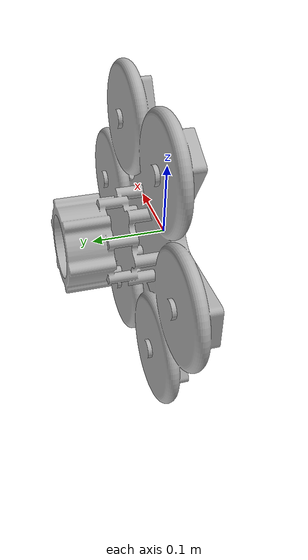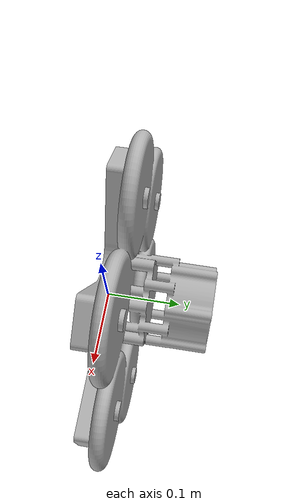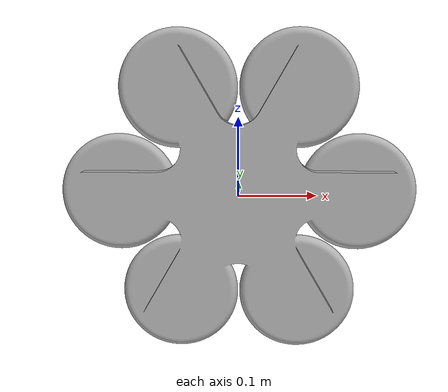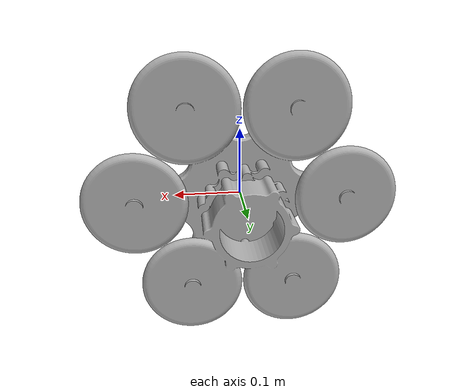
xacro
<?xml version="1.0" ?>
<robot name="Arm" xmlns:xacro="http://www.ros.org/wiki/xacro">

<xacro:include filename="$(find Arm_description)/urdf/materials.xacro" />
<xacro:include filename="$(find Arm_description)/urdf/Arm.trans" />
<xacro:include filename="$(find Arm_description)/urdf/Arm.gazebo" />
<link name="base_link">
  <inertial>
    <origin xyz="-1.2071043915756002e-08 0.030288209954444433 -7.923398208424698e-11" rpy="0 0 0"/>
    <mass value="33.31647970550474"/>
    <inertia ixx="0.340676" iyy="0.640553" izz="0.340676" ixy="0.0" iyz="0.0" ixz="0.0"/>
  </inertial>
  <visual>
    <origin xyz="0 0 0" rpy="0 0 0"/>
    <geometry>
      <mesh filename="file://$(find Arm_description)/meshes/base_link.stl" scale="0.001 0.001 0.001"/>
    </geometry>
    <material name="silver"/>
  </visual>
  <collision>
    <origin xyz="0 0 0" rpy="0 0 0"/>
    <geometry>
      <mesh filename="file://$(find Arm_description)/meshes/base_link.stl" scale="0.001 0.001 0.001"/>
    </geometry>
  </collision>
</link>

</robot>

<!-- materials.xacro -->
<robot name="Arm" xmlns:xacro="http://www.ros.org/wiki/xacro" >

<material name="silver">
  <color rgba="0.700 0.700 0.700 1.000"/>
</material>

</robot>

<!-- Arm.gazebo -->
<robot name="Arm" xmlns:xacro="http://www.ros.org/wiki/xacro" >

<xacro:property name="body_color" value="Gazebo/Silver" />

<gazebo>
  <plugin name="control" filename="libgazebo_ros_control.so"/>
</gazebo>
<gazebo reference="base_link">
  <material>${body_color}</material>
  <mu1>0.2</mu1>
  <mu2>0.2</mu2>
  <self_collide>true</self_collide>
  <gravity>true</gravity>
</gazebo>

</robot>
